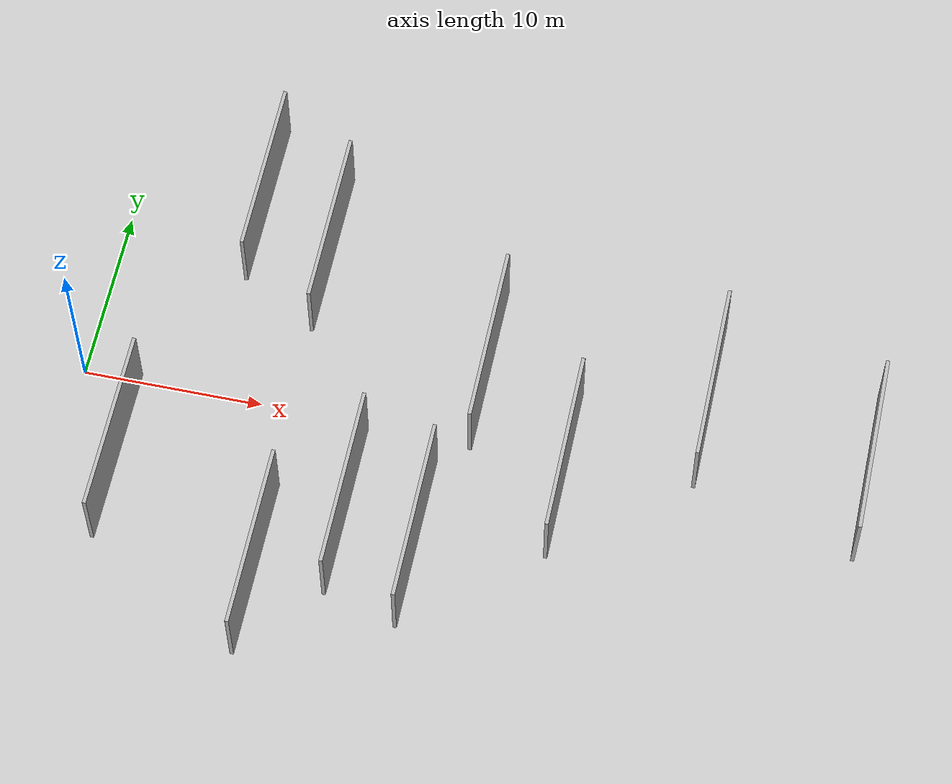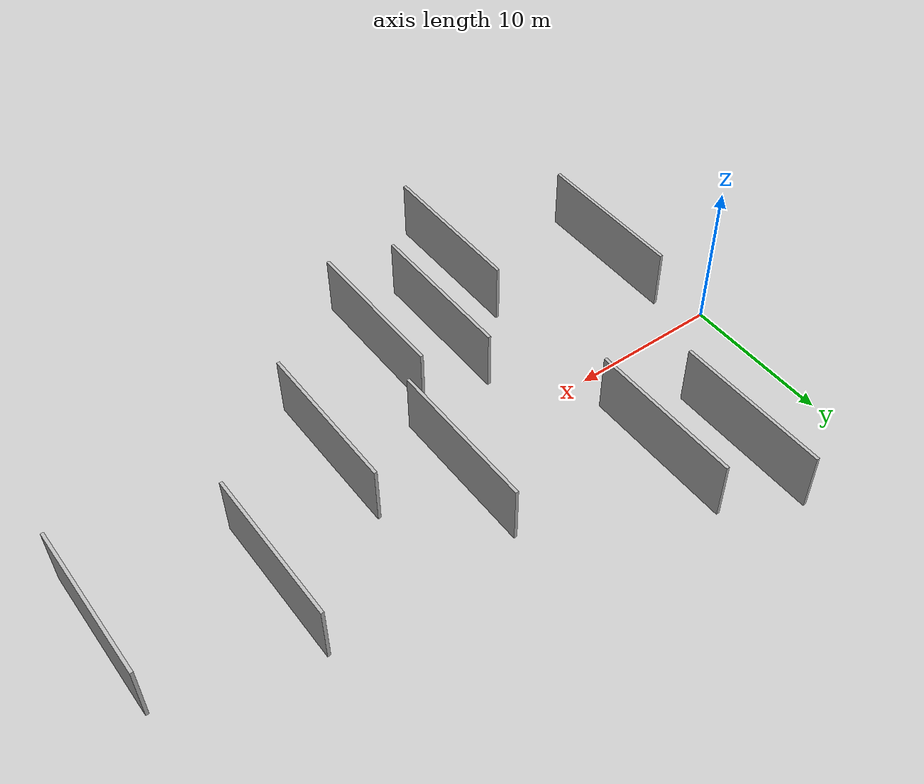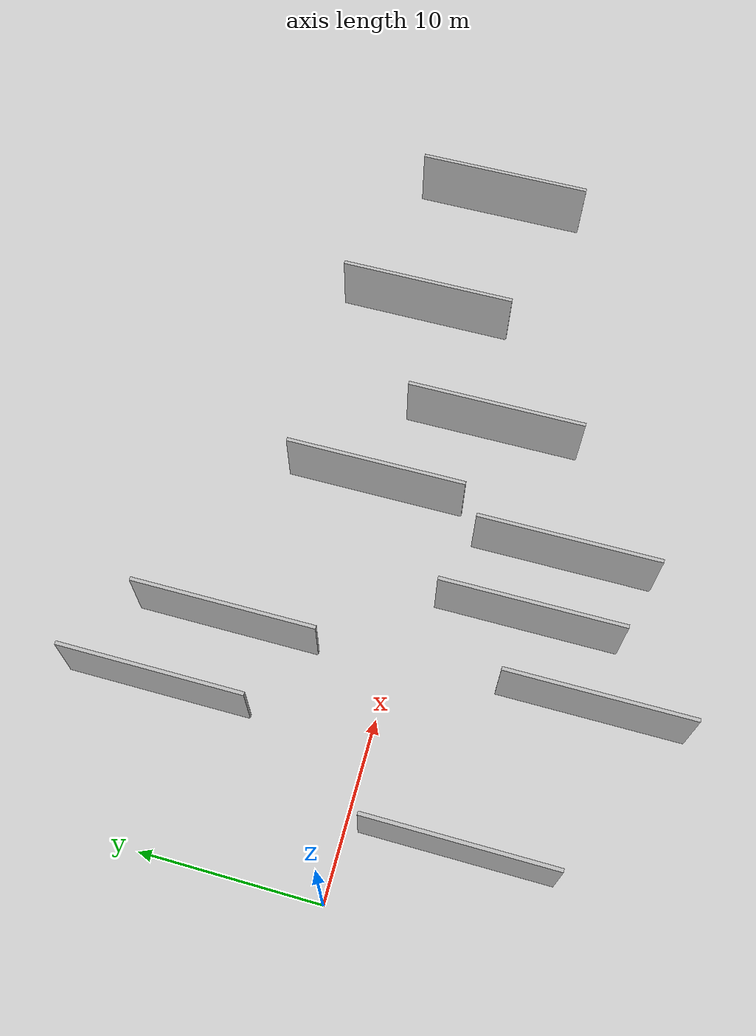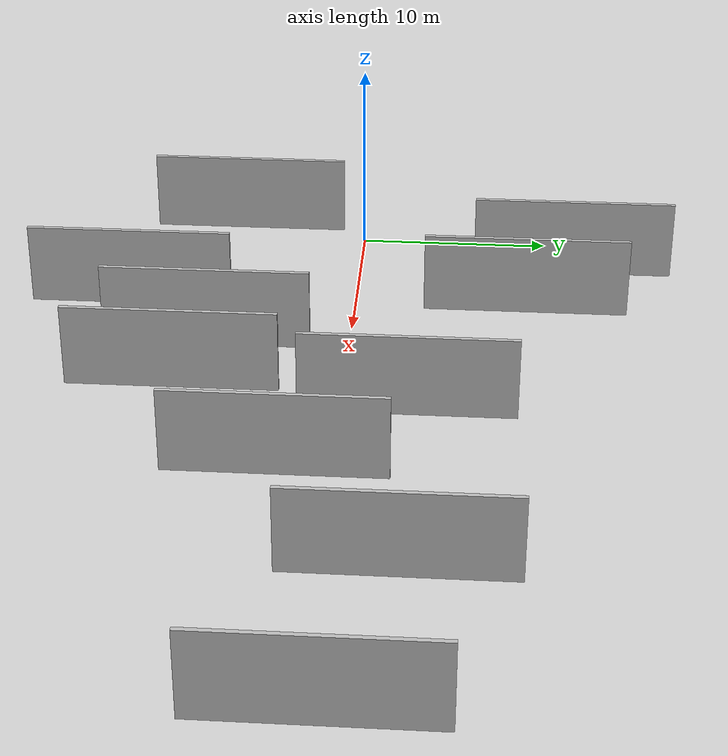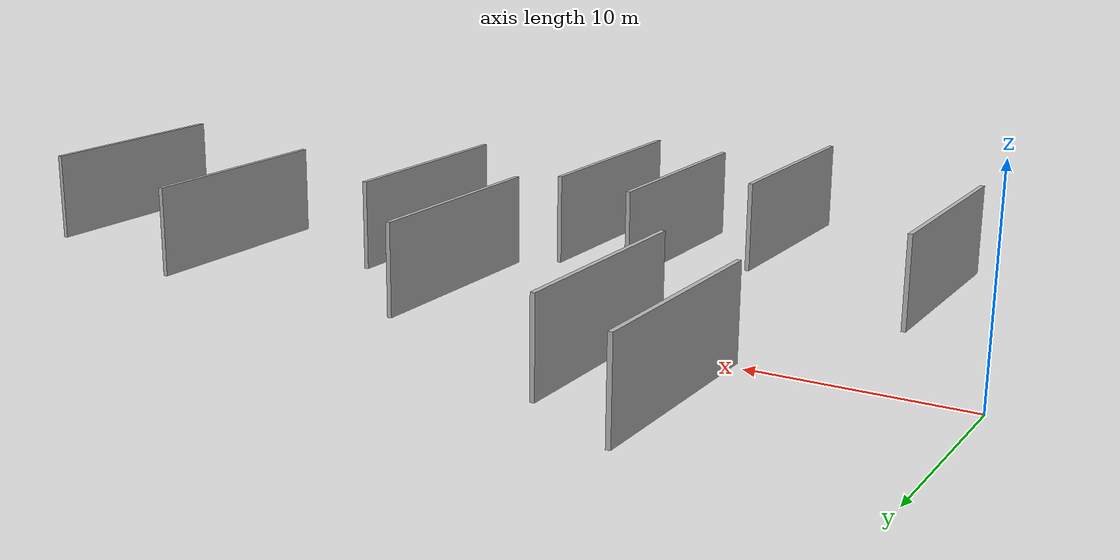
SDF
<sdf version="1.6">
 <world name="default">
  <scene>
   <sky><clouds><speed>12</speed></clouds></sky>
   <ambient>0.4 0.4 0.4 1</ambient>
   <background>0.7 0.7 0.7 1</background>
   <shadows>1</shadows>
  </scene>
  <gravity>0 0 -9.8066</gravity>
  <magnetic_field>6e-06 2.3e-05 -4.2e-05</magnetic_field>
  <physics default="0" name="default_physics" type="ode">
   <ode>
    <solver>
     <type>quick</type>
     <iters>10</iters>
     <sor>1.0</sor>
     <use_dynamic_moi_rescaling>0</use_dynamic_moi_rescaling>
    </solver>
    <constraints>
     <cfm>0</cfm>
     <erp>0.2</erp>
     <contact_max_correcting_vel>100</contact_max_correcting_vel>
     <contact_surface_layer>0.001</contact_surface_layer>
    </constraints>
   </ode>
   <max_step_size>0.004</max_step_size>
   <real_time_factor>1</real_time_factor>
   <real_time_update_rate>250</real_time_update_rate>
  </physics>
  <light name="sun" type="directional">
   <pose>0 0 10 0 0 0</pose>
   <diffuse>0.8 0.8 0.8 1</diffuse>
   <specular>0.2 0.2 0.2 1</specular>
   <attenuation>
    <range>1000</range>
    <constant>0.9</constant>
    <linear>0.01</linear>
    <quadratic>0.001</quadratic>
   </attenuation>
   <direction>-0.5 0.1 -0.9</direction>
  </light>
  <model name="grey_wall_1">
   <static>1</static>
   <pose>3.6419 -5.8336 2.5 0.000000 0.000000 1.570796</pose>
   <link name="link">
    <pose>0 0 2.00 0 0 0</pose>
    <collision name="collision"><geometry><box><size>10.00 0.2 4.00</size></box></geometry></collision>
    <visual name="visual">
     <cast_shadows>0</cast_shadows>
     <geometry><box><size>10.00 0.2 4.00</size></box></geometry>
     <material>
      <script>
       <uri>model://HANNAS_wall/materials/scripts</uri>
       <uri>model://HANNAS_wall/materials/textures</uri>
       <name>vrc/HANNAS_wall</name>
      </script>
     </material>
    </visual>
   </link>
  </model>
  <model name="grey_wall_2">
   <static>1</static>
   <pose>16.3322 -6.5451 2.5 0.000000 0.000000 1.570796</pose>
   <link name="link">
    <pose>0 0 2.00 0 0 0</pose>
    <collision name="collision"><geometry><box><size>10.00 0.2 4.00</size></box></geometry></collision>
    <visual name="visual">
     <cast_shadows>0</cast_shadows>
     <geometry><box><size>10.00 0.2 4.00</size></box></geometry>
     <material>
      <script>
       <uri>model://HANNAS_wall/materials/scripts</uri>
       <uri>model://HANNAS_wall/materials/textures</uri>
       <name>vrc/HANNAS_wall</name>
      </script>
     </material>
    </visual>
   </link>
  </model>
  <model name="grey_wall_3">
   <static>1</static>
   <pose>34.0703 3.5793 2.5 0.000000 0.000000 1.570796</pose>
   <link name="link">
    <pose>0 0 2.00 0 0 0</pose>
    <collision name="collision"><geometry><box><size>10.00 0.2 4.00</size></box></geometry></collision>
    <visual name="visual">
     <cast_shadows>0</cast_shadows>
     <geometry><box><size>10.00 0.2 4.00</size></box></geometry>
     <material>
      <script>
       <uri>model://HANNAS_wall/materials/scripts</uri>
       <uri>model://HANNAS_wall/materials/textures</uri>
       <name>vrc/HANNAS_wall</name>
      </script>
     </material>
    </visual>
   </link>
  </model>
  <model name="grey_wall_4">
   <static>1</static>
   <pose>42.9721 1.0559 2.5 0.000000 0.000000 1.570796</pose>
   <link name="link">
    <pose>0 0 2.00 0 0 0</pose>
    <collision name="collision"><geometry><box><size>10.00 0.2 4.00</size></box></geometry></collision>
    <visual name="visual">
     <cast_shadows>0</cast_shadows>
     <geometry><box><size>10.00 0.2 4.00</size></box></geometry>
     <material>
      <script>
       <uri>model://HANNAS_wall/materials/scripts</uri>
       <uri>model://HANNAS_wall/materials/textures</uri>
       <name>vrc/HANNAS_wall</name>
      </script>
     </material>
    </visual>
   </link>
  </model>
  <model name="grey_wall_5">
   <static>1</static>
   <pose>21.9994 3.3655 2.5 0.000000 0.000000 1.570796</pose>
   <link name="link">
    <pose>0 0 2.00 0 0 0</pose>
    <collision name="collision"><geometry><box><size>10.00 0.2 4.00</size></box></geometry></collision>
    <visual name="visual">
     <cast_shadows>0</cast_shadows>
     <geometry><box><size>10.00 0.2 4.00</size></box></geometry>
     <material>
      <script>
       <uri>model://HANNAS_wall/materials/scripts</uri>
       <uri>model://HANNAS_wall/materials/textures</uri>
       <name>vrc/HANNAS_wall</name>
      </script>
     </material>
    </visual>
   </link>
  </model>
  <model name="grey_wall_6">
   <static>1</static>
   <pose>12.4677 -10.8119 2.5 0.000000 0.000000 1.570796</pose>
   <link name="link">
    <pose>0 0 2.00 0 0 0</pose>
    <collision name="collision"><geometry><box><size>10.00 0.2 4.00</size></box></geometry></collision>
    <visual name="visual">
     <cast_shadows>0</cast_shadows>
     <geometry><box><size>10.00 0.2 4.00</size></box></geometry>
     <material>
      <script>
       <uri>model://HANNAS_wall/materials/scripts</uri>
       <uri>model://HANNAS_wall/materials/textures</uri>
       <name>vrc/HANNAS_wall</name>
      </script>
     </material>
    </visual>
   </link>
  </model>
  <model name="grey_wall_7">
   <static>1</static>
   <pose>12.0495 8.7406 2.5 0.000000 0.000000 1.570796</pose>
   <link name="link">
    <pose>0 0 2.00 0 0 0</pose>
    <collision name="collision"><geometry><box><size>10.00 0.2 4.00</size></box></geometry></collision>
    <visual name="visual">
     <cast_shadows>0</cast_shadows>
     <geometry><box><size>10.00 0.2 4.00</size></box></geometry>
     <material>
      <script>
       <uri>model://HANNAS_wall/materials/scripts</uri>
       <uri>model://HANNAS_wall/materials/textures</uri>
       <name>vrc/HANNAS_wall</name>
      </script>
     </material>
    </visual>
   </link>
  </model>
  <model name="grey_wall_8">
   <static>1</static>
   <pose>7.7662 11.1593 2.5 0.000000 0.000000 1.570796</pose>
   <link name="link">
    <pose>0 0 2.00 0 0 0</pose>
    <collision name="collision"><geometry><box><size>10.00 0.2 4.00</size></box></geometry></collision>
    <visual name="visual">
     <cast_shadows>0</cast_shadows>
     <geometry><box><size>10.00 0.2 4.00</size></box></geometry>
     <material>
      <script>
       <uri>model://HANNAS_wall/materials/scripts</uri>
       <uri>model://HANNAS_wall/materials/textures</uri>
       <name>vrc/HANNAS_wall</name>
      </script>
     </material>
    </visual>
   </link>
  </model>
  <model name="grey_wall_9">
   <static>1</static>
   <pose>20.3575 -7.6231 2.5 0.000000 0.000000 1.570796</pose>
   <link name="link">
    <pose>0 0 2.00 0 0 0</pose>
    <collision name="collision"><geometry><box><size>10.00 0.2 4.00</size></box></geometry></collision>
    <visual name="visual">
     <cast_shadows>0</cast_shadows>
     <geometry><box><size>10.00 0.2 4.00</size></box></geometry>
     <material>
      <script>
       <uri>model://HANNAS_wall/materials/scripts</uri>
       <uri>model://HANNAS_wall/materials/textures</uri>
       <name>vrc/HANNAS_wall</name>
      </script>
     </material>
    </visual>
   </link>
  </model>
  <model name="grey_wall_10">
   <static>1</static>
   <pose>27.2020 -2.1033 2.5 0.000000 0.000000 1.570796</pose>
   <link name="link">
    <pose>0 0 2.00 0 0 0</pose>
    <collision name="collision"><geometry><box><size>10.00 0.2 4.00</size></box></geometry></collision>
    <visual name="visual">
     <cast_shadows>0</cast_shadows>
     <geometry><box><size>10.00 0.2 4.00</size></box></geometry>
     <material>
      <script>
       <uri>model://HANNAS_wall/materials/scripts</uri>
       <uri>model://HANNAS_wall/materials/textures</uri>
       <name>vrc/HANNAS_wall</name>
      </script>
     </material>
    </visual>
   </link>
  </model>
 </world>
</sdf>
